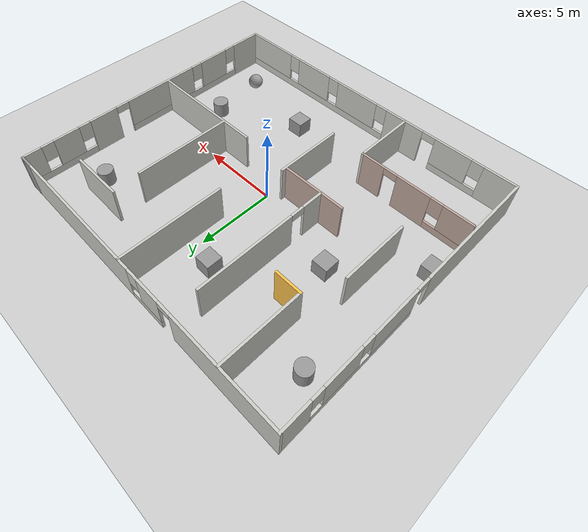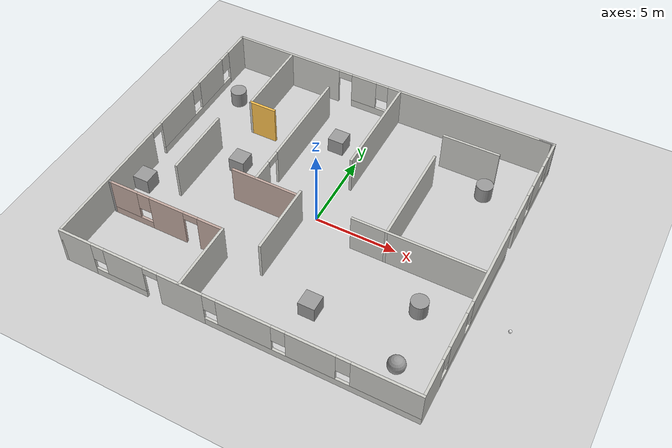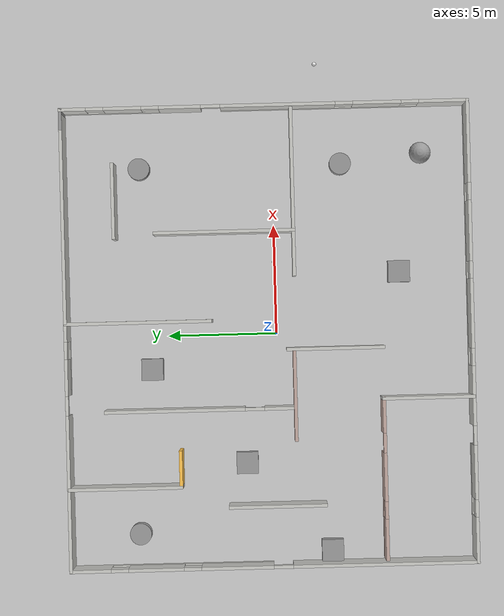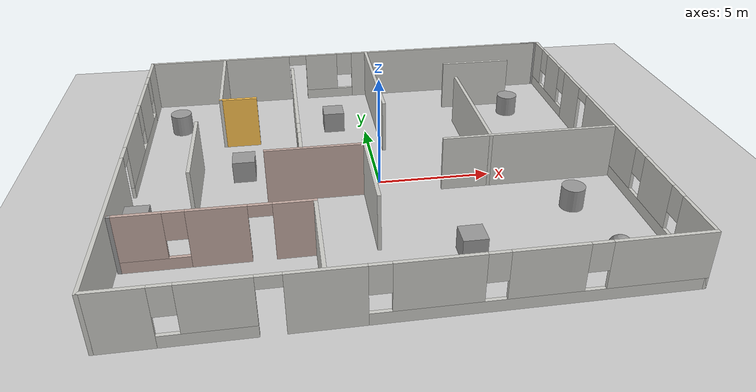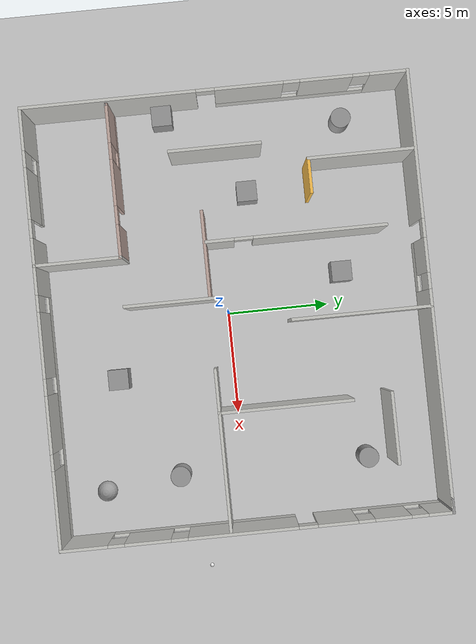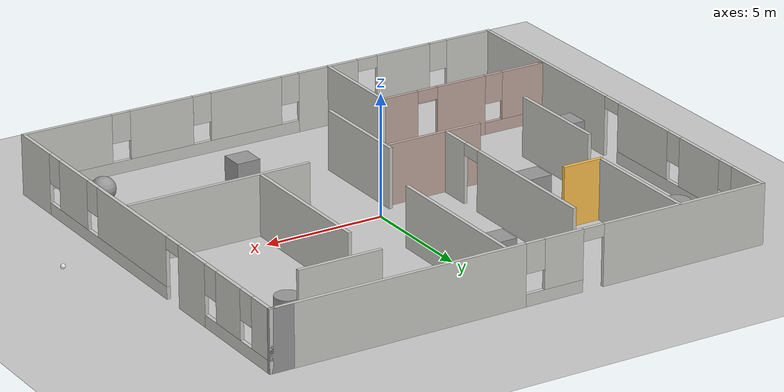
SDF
<sdf version="1.6">
 <world name="default">
  <light name="sun" type="directional">
   <pose>0 0 10 0 -0 0</pose>
   <diffuse>0.8 0.8 0.8 1</diffuse>
   <specular>0.2 0.2 0.2 1</specular>
   <attenuation>
    <range>1000</range>
    <constant>0.9</constant>
    <linear>0.01</linear>
    <quadratic>0.001</quadratic>
   </attenuation>
   <direction>-0.5 0.1 -0.9</direction>
  </light>
  <model name="ground_plane">
   <static>1</static>
   <link name="link">
    <collision name="collision">
     <geometry><plane><normal>0 0 1</normal><size>100 100</size></plane></geometry>
     <surface><friction><ode><mu>100</mu><mu2>50</mu2></ode></friction></surface>
    </collision>
    <visual name="visual">
     <cast_shadows>0</cast_shadows>
     <geometry><plane><normal>0 0 1</normal><size>100 100</size></plane></geometry>
     <material>
      <script><uri>file://media/materials/scripts/gazebo.material</uri><name>Gazebo/Grey</name></script>
     </material>
    </visual>
   </link>
  </model>
  <gravity>0 0 -9.8</gravity>
  <magnetic_field>6e-06 2.3e-05 -4.2e-05</magnetic_field>
  <atmosphere type="adiabatic"/>
  <physics name="default_physics" default="0" type="ode">
   <max_step_size>0.001</max_step_size>
   <real_time_factor>1</real_time_factor>
   <real_time_update_rate>1000</real_time_update_rate>
  </physics>
  <scene><ambient>0.4 0.4 0.4 1</ambient><background>0.7 0.7 0.7 1</background><shadows>1</shadows></scene>
  <spherical_coordinates>
   <surface_model>EARTH_WGS84</surface_model>
   <latitude_deg>0</latitude_deg>
   <longitude_deg>0</longitude_deg>
   <elevation>0</elevation>
   <heading_deg>0</heading_deg>
  </spherical_coordinates>
  <model name="training_area">
   <pose>-0.09596 0.33644 0 0 -0 0</pose>
   <link name="Wall_11">
    <collision name="Wall_11_Collision">
     <geometry><box><size>4.25 0.15 2.5</size></box></geometry>
     <pose>0 0 1.25 0 -0 0</pose>
    </collision>
    <visual name="Wall_11_Visual">
     <pose>0 0 1.25 0 -0 0</pose>
     <geometry><box><size>4.25 0.15 2.5</size></box></geometry>
     <material>
      <script><uri>file://media/materials/scripts/gazebo.material</uri><name>Gazebo/CeilingTiled</name></script>
      <ambient>0.760784 0.662745 0.627451 1</ambient>
     </material>
     <meta><layer>0</layer></meta>
    </visual>
    <pose>-2.97768 -7.23047 0 0 0 -1.5708</pose>
   </link>
   <link name="Wall_13">
    <pose>-6.65268 -5.18047 0 0 -0 3.14159</pose>
    <visual name="Wall_13_Visual_0">
     <pose>-2.92229 0 1.25 0 -0 0</pose>
     <geometry><box><size>1.65542 0.15 2.5</size></box></geometry>
     <material>
      <script><uri>file://media/materials/scripts/gazebo.material</uri><name>Gazebo/Grey</name></script>
      <ambient>0.760784 0.662745 0.627451 1</ambient>
     </material>
     <meta><layer>0</layer></meta>
    </visual>
    <collision name="Wall_13_Collision_0">
     <geometry><box><size>1.65542 0.15 2.5</size></box></geometry>
     <pose>-2.92229 0 1.25 0 -0 0</pose>
    </collision>
    <visual name="Wall_13_Visual_1">
     <pose>-0.081383 0 1.25 0 -0 0</pose>
     <geometry><box><size>2.22639 0.15 2.5</size></box></geometry>
     <material>
      <script><uri>file://media/materials/scripts/gazebo.material</uri><name>Gazebo/Grey</name></script>
      <ambient>0.760784 0.662745 0.627451 1</ambient>
     </material>
     <meta><layer>0</layer></meta>
    </visual>
    <collision name="Wall_13_Collision_1">
     <geometry><box><size>2.22639 0.15 2.5</size></box></geometry>
     <pose>-0.081383 0 1.25 0 -0 0</pose>
    </collision>
    <visual name="Wall_13_Visual_2">
     <pose>2.39091 0 0.25 0 -0 0</pose>
     <geometry><box><size>2.71819 0.15 0.5</size></box></geometry>
     <material>
      <script><uri>file://media/materials/scripts/gazebo.material</uri><name>Gazebo/Grey</name></script>
      <ambient>0.760784 0.662745 0.627451 1</ambient>
     </material>
     <meta><layer>0</layer></meta>
    </visual>
    <collision name="Wall_13_Collision_2">
     <geometry><box><size>2.71819 0.15 0.5</size></box></geometry>
     <pose>2.39091 0 0.25 0 -0 0</pose>
    </collision>
    <visual name="Wall_13_Visual_3">
     <pose>2.79091 0 1.5 0 -0 0</pose>
     <geometry><box><size>1.91819 0.15 2</size></box></geometry>
     <material>
      <script><uri>file://media/materials/scripts/gazebo.material</uri><name>Gazebo/Grey</name></script>
      <ambient>0.760784 0.662745 0.627451 1</ambient>
     </material>
     <meta><layer>0</layer></meta>
    </visual>
    <collision name="Wall_13_Collision_3">
     <geometry><box><size>1.91819 0.15 2</size></box></geometry>
     <pose>2.79091 0 1.5 0 -0 0</pose>
    </collision>
    <visual name="Wall_13_Visual_4">
     <pose>1.43181 0 1.9 0 -0 0</pose>
     <geometry><box><size>0.8 0.15 1.2</size></box></geometry>
     <material>
      <script><uri>file://media/materials/scripts/gazebo.material</uri><name>Gazebo/Grey</name></script>
      <ambient>0.760784 0.662745 0.627451 1</ambient>
     </material>
     <meta><layer>0</layer></meta>
    </visual>
    <collision name="Wall_13_Collision_4">
     <geometry><box><size>0.8 0.15 1.2</size></box></geometry>
     <pose>1.43181 0 1.9 0 -0 0</pose>
    </collision>
    <visual name="Wall_13_Visual_5">
     <pose>-1.64458 0 2.25 0 -0 0</pose>
     <geometry><box><size>0.9 0.15 0.5</size></box></geometry>
     <material>
      <script><uri>file://media/materials/scripts/gazebo.material</uri><name>Gazebo/Grey</name></script>
      <ambient>0.760784 0.662745 0.627451 1</ambient>
     </material>
     <meta><layer>0</layer></meta>
    </visual>
    <collision name="Wall_13_Collision_5">
     <geometry><box><size>0.9 0.15 0.5</size></box></geometry>
     <pose>-1.64458 0 2.25 0 -0 0</pose>
    </collision>
   </link>
   <link name="Wall_14">
    <collision name="Wall_14_Collision">
     <geometry><box><size>0.15 0.15 2.5</size></box></geometry>
     <pose>0 0 1.25 0 -0 0</pose>
    </collision>
    <visual name="Wall_14_Visual">
     <pose>0 0 1.25 0 -0 0</pose>
     <geometry><box><size>0.15 0.15 2.5</size></box></geometry>
     <material>
      <script><uri>file://media/materials/scripts/gazebo.material</uri><name>Gazebo/Grey</name></script>
      <ambient>1 1 1 1</ambient>
     </material>
     <meta><layer>0</layer></meta>
    </visual>
    <pose>-10.3277 -5.18047 0 0 -0 0</pose>
   </link>
   <link name="Wall_16">
    <collision name="Wall_16_Collision">
     <geometry><box><size>4.25 0.15 2.5</size></box></geometry>
     <pose>0 0 1.25 0 -0 0</pose>
    </collision>
    <visual name="Wall_16_Visual">
     <pose>0 0 1.25 0 -0 0</pose>
     <geometry><box><size>4.25 0.15 2.5</size></box></geometry>
     <material>
      <script><uri>file://media/materials/scripts/gazebo.material</uri><name>Gazebo/Grey</name></script>
      <ambient>0.760784 0.662745 0.627451 1</ambient>
     </material>
     <meta><layer>0</layer></meta>
    </visual>
    <pose>-2.72495 -1.14348 0 0 -0 0</pose>
   </link>
   <link name="Wall_18">
    <pose>-3.31028 3.23789 0 0 -0 1.5708</pose>
    <visual name="Wall_18_Visual_0">
     <pose>-3.66742 0 1.25 0 -0 0</pose>
     <geometry><box><size>1.41515 0.15 2.5</size></box></geometry>
     <material>
      <script><uri>file://media/materials/scripts/gazebo.material</uri><name>Gazebo/CeilingTiled</name></script>
      <ambient>0.760784 0.662745 0.627451 1</ambient>
     </material>
     <meta><layer>0</layer></meta>
    </visual>
    <collision name="Wall_18_Collision_0">
     <geometry><box><size>1.41515 0.15 2.5</size></box></geometry>
     <pose>-3.66742 0 1.25 0 -0 0</pose>
    </collision>
    <visual name="Wall_18_Visual_1">
     <pose>1.15758 0 1.25 0 -0 0</pose>
     <geometry><box><size>6.43485 0.15 2.5</size></box></geometry>
     <material>
      <script><uri>file://media/materials/scripts/gazebo.material</uri><name>Gazebo/CeilingTiled</name></script>
      <ambient>0.760784 0.662745 0.627451 1</ambient>
     </material>
     <meta><layer>0</layer></meta>
    </visual>
    <collision name="Wall_18_Collision_1">
     <geometry><box><size>6.43485 0.15 2.5</size></box></geometry>
     <pose>1.15758 0 1.25 0 -0 0</pose>
    </collision>
    <visual name="Wall_18_Visual_2">
     <pose>-2.50985 0 2.25 0 -0 0</pose>
     <geometry><box><size>0.9 0.15 0.5</size></box></geometry>
     <material>
      <script><uri>file://media/materials/scripts/gazebo.material</uri><name>Gazebo/CeilingTiled</name></script>
      <ambient>0.760784 0.662745 0.627451 1</ambient>
     </material>
     <meta><layer>0</layer></meta>
    </visual>
    <collision name="Wall_18_Collision_2">
     <geometry><box><size>0.9 0.15 0.5</size></box></geometry>
     <pose>-2.50985 0 2.25 0 -0 0</pose>
    </collision>
   </link>
   <link name="Wall_20">
    <collision name="Wall_20_Collision">
     <geometry><box><size>4.5 0.15 2.5</size></box></geometry>
     <pose>0 0 1.25 0 -0 0</pose>
    </collision>
    <visual name="Wall_20_Visual">
     <pose>0 0 1.25 0 -0 0</pose>
     <geometry><box><size>4.5 0.15 2.5</size></box></geometry>
     <material>
      <script><uri>file://media/materials/scripts/gazebo.material</uri><name>Gazebo/CeilingTiled</name></script>
      <ambient>0.996078 0.47451 0.0196078 1</ambient>
     </material>
     <meta><layer>0</layer></meta>
    </visual>
    <pose>-0.625048 -3.03701 0 0 -0 1.5708</pose>
   </link>
   <link name="Wall_22">
    <collision name="Wall_22_Collision">
     <geometry><box><size>5.25 0.15 2.5</size></box></geometry>
     <pose>0 0 1.25 0 -0 0</pose>
    </collision>
    <visual name="Wall_22_Visual">
     <pose>0 0 1.25 0 -0 0</pose>
     <geometry><box><size>5.25 0.15 2.5</size></box></geometry>
     <material>
      <script><uri>file://media/materials/scripts/gazebo.material</uri><name>Gazebo/CeilingTiled</name></script>
      <ambient>1 0.764706 0.305882 1</ambient>
     </material>
     <meta><layer>0</layer></meta>
    </visual>
    <pose>-6.80922 6.72196 0 0 0 -1.5708</pose>
   </link>
   <link name="Wall_23">
    <collision name="Wall_23_Collision">
     <geometry><box><size>1.75 0.15 2.5</size></box></geometry>
     <pose>0 0 1.25 0 -0 0</pose>
    </collision>
    <visual name="Wall_23_Visual">
     <pose>0 0 1.25 0 -0 0</pose>
     <geometry><box><size>1.75 0.15 2.5</size></box></geometry>
     <material>
      <script><uri>file://media/materials/scripts/gazebo.material</uri><name>Gazebo/Grey</name></script>
      <ambient>1 0.764706 0.305882 1</ambient>
     </material>
     <meta><layer>0</layer></meta>
    </visual>
    <pose>-6.00922 4.17196 0 0 -0 0</pose>
   </link>
   <link name="Wall_26">
    <collision name="Wall_26_Collision">
     <geometry><box><size>4.5 0.15 2.5</size></box></geometry>
     <pose>0 0 1.25 0 -0 0</pose>
    </collision>
    <visual name="Wall_26_Visual">
     <pose>0 0 1.25 0 -0 0</pose>
     <geometry><box><size>4.5 0.15 2.5</size></box></geometry>
     <material>
      <script><uri>file://media/materials/scripts/gazebo.material</uri><name>Gazebo/CeilingTiled</name></script>
      <ambient>1 0.764706 0.305882 1</ambient>
     </material>
     <meta><layer>0</layer></meta>
    </visual>
    <pose>-7.78566 -0.226392 0 0 0 -1.5708</pose>
   </link>
   <link name="Wall_28">
    <collision name="Wall_28_Collision">
     <geometry><box><size>6.75 0.15 2.5</size></box></geometry>
     <pose>0 0 1.25 0 -0 0</pose>
    </collision>
    <visual name="Wall_28_Visual">
     <pose>0 0 1.25 0 -0 0</pose>
     <geometry><box><size>6.75 0.15 2.5</size></box></geometry>
     <material>
      <script><uri>file://media/materials/scripts/gazebo.material</uri><name>Gazebo/CeilingTiled</name></script>
      <ambient>0.435294 0.796078 0.67451 1</ambient>
     </material>
     <meta><layer>0</layer></meta>
    </visual>
    <pose>0.758252 5.97196 0 0 0 -1.5708</pose>
   </link>
   <link name="Wall_3">
    <pose>-0.13 9.3 0 0 -0 3.14159</pose>
    <visual name="Wall_3_Visual_0">
     <pose>-5.29204 0 1.25 0 -0 0</pose>
     <geometry><box><size>10.4159 0.15 2.5</size></box></geometry>
     <material>
      <script><uri>file://media/materials/scripts/gazebo.material</uri><name>Gazebo/CeilingTiled</name></script>
      <ambient>1 0.764706 0.305882 1</ambient>
     </material>
     <meta><layer>0</layer></meta>
    </visual>
    <collision name="Wall_3_Collision_0">
     <geometry><box><size>10.4159 0.15 2.5</size></box></geometry>
     <pose>-5.29204 0 1.25 0 -0 0</pose>
    </collision>
    <visual name="Wall_3_Visual_1">
     <pose>6.89421 0 1.25 0 -0 0</pose>
     <geometry><box><size>7.21159 0.15 2.5</size></box></geometry>
     <material>
      <script><uri>file://media/materials/scripts/gazebo.material</uri><name>Gazebo/CeilingTiled</name></script>
      <ambient>1 0.764706 0.305882 1</ambient>
     </material>
     <meta><layer>0</layer></meta>
    </visual>
    <collision name="Wall_3_Collision_1">
     <geometry><box><size>7.21159 0.15 2.5</size></box></geometry>
     <pose>6.89421 0 1.25 0 -0 0</pose>
    </collision>
    <visual name="Wall_3_Visual_2">
     <pose>1.15217 0 0.25 0 -0 0</pose>
     <geometry><box><size>2.47249 0.15 0.5</size></box></geometry>
     <material>
      <script><uri>file://media/materials/scripts/gazebo.material</uri><name>Gazebo/CeilingTiled</name></script>
      <ambient>1 0.764706 0.305882 1</ambient>
     </material>
     <meta><layer>0</layer></meta>
    </visual>
    <collision name="Wall_3_Collision_2">
     <geometry><box><size>2.47249 0.15 0.5</size></box></geometry>
     <pose>1.15217 0 0.25 0 -0 0</pose>
    </collision>
    <visual name="Wall_3_Visual_3">
     <pose>1.55217 0 1.5 0 -0 0</pose>
     <geometry><box><size>1.67249 0.15 2</size></box></geometry>
     <material>
      <script><uri>file://media/materials/scripts/gazebo.material</uri><name>Gazebo/CeilingTiled</name></script>
      <ambient>1 0.764706 0.305882 1</ambient>
     </material>
     <meta><layer>0</layer></meta>
    </visual>
    <collision name="Wall_3_Collision_3">
     <geometry><box><size>1.67249 0.15 2</size></box></geometry>
     <pose>1.55217 0 1.5 0 -0 0</pose>
    </collision>
    <visual name="Wall_3_Visual_4">
     <pose>0.315921 0 1.9 0 -0 0</pose>
     <geometry><box><size>0.8 0.15 1.2</size></box></geometry>
     <material>
      <script><uri>file://media/materials/scripts/gazebo.material</uri><name>Gazebo/CeilingTiled</name></script>
      <ambient>1 0.764706 0.305882 1</ambient>
     </material>
     <meta><layer>0</layer></meta>
    </visual>
    <collision name="Wall_3_Collision_4">
     <geometry><box><size>0.8 0.15 1.2</size></box></geometry>
     <pose>0.315921 0 1.9 0 -0 0</pose>
    </collision>
    <visual name="Wall_3_Visual_5">
     <pose>2.83841 0 2.25 0 -0 0</pose>
     <geometry><box><size>0.9 0.15 0.5</size></box></geometry>
     <material>
      <script><uri>file://media/materials/scripts/gazebo.material</uri><name>Gazebo/CeilingTiled</name></script>
      <ambient>1 0.764706 0.305882 1</ambient>
     </material>
     <meta><layer>0</layer></meta>
    </visual>
    <collision name="Wall_3_Collision_5">
     <geometry><box><size>0.9 0.15 0.5</size></box></geometry>
     <pose>2.83841 0 2.25 0 -0 0</pose>
    </collision>
   </link>
   <link name="Wall_30">
    <collision name="Wall_30_Collision">
     <geometry><box><size>3.5 0.15 2.5</size></box></geometry>
     <pose>0 0 1.25 0 -0 0</pose>
    </collision>
    <visual name="Wall_30_Visual">
     <pose>0 0 1.25 0 -0 0</pose>
     <geometry><box><size>3.5 0.15 2.5</size></box></geometry>
     <material>
      <script><uri>file://media/materials/scripts/gazebo.material</uri><name>Gazebo/CeilingTiled</name></script>
      <ambient>0.435294 0.796078 0.67451 1</ambient>
     </material>
     <meta><layer>0</layer></meta>
    </visual>
    <pose>6.33904 6.99359 0 0 -0 0</pose>
   </link>
   <link name="Wall_32">
    <collision name="Wall_32_Collision">
     <geometry><box><size>6.5 0.15 2.5</size></box></geometry>
     <pose>0 0 1.25 0 -0 0</pose>
    </collision>
    <visual name="Wall_32_Visual">
     <pose>0 0 1.25 0 -0 0</pose>
     <geometry><box><size>6.5 0.15 2.5</size></box></geometry>
     <material>
      <script><uri>file://media/materials/scripts/gazebo.material</uri><name>Gazebo/CeilingTiled</name></script>
      <ambient>0.435294 0.796078 0.67451 1</ambient>
     </material>
     <meta><layer>0</layer></meta>
    </visual>
    <pose>4.82678 1.94706 0 0 0 -1.5708</pose>
   </link>
   <link name="Wall_34">
    <collision name="Wall_34_Collision">
     <geometry><box><size>7.75 0.15 2.5</size></box></geometry>
     <pose>0 0 1.25 0 -0 0</pose>
    </collision>
    <visual name="Wall_34_Visual">
     <pose>0 0 1.25 0 -0 0</pose>
     <geometry><box><size>7.75 0.15 2.5</size></box></geometry>
     <material>
      <script><uri>file://media/materials/scripts/gazebo.material</uri><name>Gazebo/CeilingTiled</name></script>
      <ambient>0.996078 0.47451 0.0196078 1</ambient>
     </material>
     <meta><layer>0</layer></meta>
    </visual>
    <pose>6.59252 -1.22485 0 0 -0 0</pose>
   </link>
   <link name="Wall_4">
    <collision name="Wall_4_Collision">
     <geometry><box><size>0.16 0.15 2.5</size></box></geometry>
     <pose>0 0 1.25 0 -0 0</pose>
    </collision>
    <visual name="Wall_4_Visual">
     <pose>0 0 1.25 0 -0 0</pose>
     <geometry><box><size>0.16 0.15 2.5</size></box></geometry>
     <material>
      <script><uri>file://media/materials/scripts/gazebo.material</uri><name>Gazebo/Grey</name></script>
      <ambient>1 1 1 1</ambient>
     </material>
     <meta><layer>0</layer></meta>
    </visual>
    <pose>-10.55 9.3 0 0 -0 0</pose>
   </link>
   <link name="Wall_5">
    <pose>-10.545 0 0 0 0 -1.5708</pose>
    <visual name="Wall_5_Visual_0">
     <pose>-8.42498 0 1.25 0 -0 0</pose>
     <geometry><box><size>1.90004 0.15 2.5</size></box></geometry>
     <material>
      <script><uri>file://media/materials/scripts/gazebo.material</uri><name>Gazebo/CeilingTiled</name></script>
      <ambient>1 0.764706 0.305882 1</ambient>
     </material>
     <meta><layer>0</layer></meta>
    </visual>
    <collision name="Wall_5_Collision_0">
     <geometry><box><size>1.90004 0.15 2.5</size></box></geometry>
     <pose>-8.42498 0 1.25 0 -0 0</pose>
    </collision>
    <visual name="Wall_5_Visual_1">
     <pose>5.11807 0 1.25 0 -0 0</pose>
     <geometry><box><size>8.51386 0.15 2.5</size></box></geometry>
     <material>
      <script><uri>file://media/materials/scripts/gazebo.material</uri><name>Gazebo/CeilingTiled</name></script>
      <ambient>1 0.764706 0.305882 1</ambient>
     </material>
     <meta><layer>0</layer></meta>
    </visual>
    <collision name="Wall_5_Collision_1">
     <geometry><box><size>8.51386 0.15 2.5</size></box></geometry>
     <pose>5.11807 0 1.25 0 -0 0</pose>
    </collision>
    <visual name="Wall_5_Visual_2">
     <pose>-3.75691 0 0.25 0 -0 0</pose>
     <geometry><box><size>7.4361 0.15 0.5</size></box></geometry>
     <material>
      <script><uri>file://media/materials/scripts/gazebo.material</uri><name>Gazebo/CeilingTiled</name></script>
      <ambient>1 0.764706 0.305882 1</ambient>
     </material>
     <meta><layer>0</layer></meta>
    </visual>
    <collision name="Wall_5_Collision_2">
     <geometry><box><size>7.4361 0.15 0.5</size></box></geometry>
     <pose>-3.75691 0 0.25 0 -0 0</pose>
    </collision>
    <visual name="Wall_5_Visual_3">
     <pose>-5.40686 0 1.5 0 -0 0</pose>
     <geometry><box><size>2.5362 0.15 2</size></box></geometry>
     <material>
      <script><uri>file://media/materials/scripts/gazebo.material</uri><name>Gazebo/CeilingTiled</name></script>
      <ambient>1 0.764706 0.305882 1</ambient>
     </material>
     <meta><layer>0</layer></meta>
    </visual>
    <collision name="Wall_5_Collision_3">
     <geometry><box><size>2.5362 0.15 2</size></box></geometry>
     <pose>-5.40686 0 1.5 0 -0 0</pose>
    </collision>
    <visual name="Wall_5_Visual_4">
     <pose>-1.68881 0 1.5 0 -0 0</pose>
     <geometry><box><size>3.2999 0.15 2</size></box></geometry>
     <material>
      <script><uri>file://media/materials/scripts/gazebo.material</uri><name>Gazebo/CeilingTiled</name></script>
      <ambient>1 0.764706 0.305882 1</ambient>
     </material>
     <meta><layer>0</layer></meta>
    </visual>
    <collision name="Wall_5_Collision_4">
     <geometry><box><size>3.2999 0.15 2</size></box></geometry>
     <pose>-1.68881 0 1.5 0 -0 0</pose>
    </collision>
    <visual name="Wall_5_Visual_5">
     <pose>-7.07496 0 1.9 0 -0 0</pose>
     <geometry><box><size>0.8 0.15 1.2</size></box></geometry>
     <material>
      <script><uri>file://media/materials/scripts/gazebo.material</uri><name>Gazebo/CeilingTiled</name></script>
      <ambient>1 0.764706 0.305882 1</ambient>
     </material>
     <meta><layer>0</layer></meta>
    </visual>
    <collision name="Wall_5_Collision_5">
     <geometry><box><size>0.8 0.15 1.2</size></box></geometry>
     <pose>-7.07496 0 1.9 0 -0 0</pose>
    </collision>
    <visual name="Wall_5_Visual_6">
     <pose>-3.73876 0 1.9 0 -0 0</pose>
     <geometry><box><size>0.8 0.15 1.2</size></box></geometry>
     <material>
      <script><uri>file://media/materials/scripts/gazebo.material</uri><name>Gazebo/CeilingTiled</name></script>
      <ambient>1 0.764706 0.305882 1</ambient>
     </material>
     <meta><layer>0</layer></meta>
    </visual>
    <collision name="Wall_5_Collision_6">
     <geometry><box><size>0.8 0.15 1.2</size></box></geometry>
     <pose>-3.73876 0 1.9 0 -0 0</pose>
    </collision>
    <visual name="Wall_5_Visual_7">
     <pose>0.41114 0 2.25 0 -0 0</pose>
     <geometry><box><size>0.9 0.15 0.5</size></box></geometry>
     <material>
      <script><uri>file://media/materials/scripts/gazebo.material</uri><name>Gazebo/CeilingTiled</name></script>
      <ambient>1 0.764706 0.305882 1</ambient>
     </material>
     <meta><layer>0</layer></meta>
    </visual>
    <collision name="Wall_5_Collision_7">
     <geometry><box><size>0.9 0.15 0.5</size></box></geometry>
     <pose>0.41114 0 2.25 0 -0 0</pose>
    </collision>
   </link>
   <link name="Wall_6">
    <pose>0.005 -9.3 0 0 -0 0</pose>
    <visual name="Wall_6_Visual_0">
     <pose>-9.56238 0 1.25 0 -0 0</pose>
     <geometry><box><size>2.12524 0.15 2.5</size></box></geometry>
     <material>
      <script><uri>file://media/materials/scripts/gazebo.material</uri><name>Gazebo/CeilingTiled</name></script>
      <ambient>1 0.764706 0.305882 1</ambient>
     </material>
     <meta><layer>0</layer></meta>
    </visual>
    <collision name="Wall_6_Collision_0">
     <geometry><box><size>2.12524 0.15 2.5</size></box></geometry>
     <pose>-9.56238 0 1.25 0 -0 0</pose>
    </collision>
    <visual name="Wall_6_Visual_1">
     <pose>-2.94841 0 1.25 0 -0 0</pose>
     <geometry><box><size>2.73031 0.15 2.5</size></box></geometry>
     <material>
      <script><uri>file://media/materials/scripts/gazebo.material</uri><name>Gazebo/CeilingTiled</name></script>
      <ambient>1 0.764706 0.305882 1</ambient>
     </material>
     <meta><layer>0</layer></meta>
    </visual>
    <collision name="Wall_6_Collision_1">
     <geometry><box><size>2.73031 0.15 2.5</size></box></geometry>
     <pose>-2.94841 0 1.25 0 -0 0</pose>
    </collision>
    <visual name="Wall_6_Visual_2">
     <pose>-6.85666 0 0.25 0 -0 0</pose>
     <geometry><box><size>3.2862 0.15 0.5</size></box></geometry>
     <material>
      <script><uri>file://media/materials/scripts/gazebo.material</uri><name>Gazebo/CeilingTiled</name></script>
      <ambient>1 0.764706 0.305882 1</ambient>
     </material>
     <meta><layer>0</layer></meta>
    </visual>
    <collision name="Wall_6_Collision_2">
     <geometry><box><size>3.2862 0.15 0.5</size></box></geometry>
     <pose>-6.85666 0 0.25 0 -0 0</pose>
    </collision>
    <visual name="Wall_6_Visual_3">
     <pose>4.52087 0 0.25 0 -0 0</pose>
     <geometry><box><size>12.2083 0.15 0.5</size></box></geometry>
     <material>
      <script><uri>file://media/materials/scripts/gazebo.material</uri><name>Gazebo/CeilingTiled</name></script>
      <ambient>1 0.764706 0.305882 1</ambient>
     </material>
     <meta><layer>0</layer></meta>
    </visual>
    <collision name="Wall_6_Collision_3">
     <geometry><box><size>12.2083 0.15 0.5</size></box></geometry>
     <pose>4.52087 0 0.25 0 -0 0</pose>
    </collision>
    <visual name="Wall_6_Visual_4">
     <pose>-6.45666 0 1.5 0 -0 0</pose>
     <geometry><box><size>2.4862 0.15 2</size></box></geometry>
     <material>
      <script><uri>file://media/materials/scripts/gazebo.material</uri><name>Gazebo/CeilingTiled</name></script>
      <ambient>1 0.764706 0.305882 1</ambient>
     </material>
     <meta><layer>0</layer></meta>
    </visual>
    <collision name="Wall_6_Collision_4">
     <geometry><box><size>2.4862 0.15 2</size></box></geometry>
     <pose>-6.45666 0 1.5 0 -0 0</pose>
    </collision>
    <visual name="Wall_6_Visual_5">
     <pose>-6.45666 0 1.5 0 -0 0</pose>
     <geometry><box><size>2.4862 0.15 2</size></box></geometry>
     <material>
      <script><uri>file://media/materials/scripts/gazebo.material</uri><name>Gazebo/CeilingTiled</name></script>
      <ambient>1 0.764706 0.305882 1</ambient>
     </material>
     <meta><layer>0</layer></meta>
    </visual>
    <collision name="Wall_6_Collision_5">
     <geometry><box><size>2.4862 0.15 2</size></box></geometry>
     <pose>-6.45666 0 1.5 0 -0 0</pose>
    </collision>
    <visual name="Wall_6_Visual_6">
     <pose>0.810323 0 1.5 0 -0 0</pose>
     <geometry><box><size>3.18716 0.15 2</size></box></geometry>
     <material>
      <script><uri>file://media/materials/scripts/gazebo.material</uri><name>Gazebo/CeilingTiled</name></script>
      <ambient>1 0.764706 0.305882 1</ambient>
     </material>
     <meta><layer>0</layer></meta>
    </visual>
    <collision name="Wall_6_Collision_6">
     <geometry><box><size>3.18716 0.15 2</size></box></geometry>
     <pose>0.810323 0 1.5 0 -0 0</pose>
    </collision>
    <visual name="Wall_6_Visual_7">
     <pose>4.59406 0 1.5 0 -0 0</pose>
     <geometry><box><size>2.78031 0.15 2</size></box></geometry>
     <material>
      <script><uri>file://media/materials/scripts/gazebo.material</uri><name>Gazebo/CeilingTiled</name></script>
      <ambient>1 0.764706 0.305882 1</ambient>
     </material>
     <meta><layer>0</layer></meta>
    </visual>
    <collision name="Wall_6_Collision_7">
     <geometry><box><size>2.78031 0.15 2</size></box></geometry>
     <pose>4.59406 0 1.5 0 -0 0</pose>
    </collision>
    <visual name="Wall_6_Visual_8">
     <pose>8.70461 0 1.5 0 -0 0</pose>
     <geometry><box><size>3.84079 0.15 2</size></box></geometry>
     <material>
      <script><uri>file://media/materials/scripts/gazebo.material</uri><name>Gazebo/CeilingTiled</name></script>
      <ambient>1 0.764706 0.305882 1</ambient>
     </material>
     <meta><layer>0</layer></meta>
    </visual>
    <collision name="Wall_6_Collision_8">
     <geometry><box><size>3.84079 0.15 2</size></box></geometry>
     <pose>8.70461 0 1.5 0 -0 0</pose>
    </collision>
    <visual name="Wall_6_Visual_9">
     <pose>-8.09976 0 1.9 0 -0 0</pose>
     <geometry><box><size>0.8 0.15 1.2</size></box></geometry>
     <material>
      <script><uri>file://media/materials/scripts/gazebo.material</uri><name>Gazebo/CeilingTiled</name></script>
      <ambient>1 0.764706 0.305882 1</ambient>
     </material>
     <meta><layer>0</layer></meta>
    </visual>
    <collision name="Wall_6_Collision_9">
     <geometry><box><size>0.8 0.15 1.2</size></box></geometry>
     <pose>-8.09976 0 1.9 0 -0 0</pose>
    </collision>
    <visual name="Wall_6_Visual_10">
     <pose>-1.18326 0 1.9 0 -0 0</pose>
     <geometry><box><size>0.8 0.15 1.2</size></box></geometry>
     <material>
      <script><uri>file://media/materials/scripts/gazebo.material</uri><name>Gazebo/CeilingTiled</name></script>
      <ambient>1 0.764706 0.305882 1</ambient>
     </material>
     <meta><layer>0</layer></meta>
    </visual>
    <collision name="Wall_6_Collision_10">
     <geometry><box><size>0.8 0.15 1.2</size></box></geometry>
     <pose>-1.18326 0 1.9 0 -0 0</pose>
    </collision>
    <visual name="Wall_6_Visual_11">
     <pose>2.8039 0 1.9 0 -0 0</pose>
     <geometry><box><size>0.8 0.15 1.2</size></box></geometry>
     <material>
      <script><uri>file://media/materials/scripts/gazebo.material</uri><name>Gazebo/CeilingTiled</name></script>
      <ambient>1 0.764706 0.305882 1</ambient>
     </material>
     <meta><layer>0</layer></meta>
    </visual>
    <collision name="Wall_6_Collision_11">
     <geometry><box><size>0.8 0.15 1.2</size></box></geometry>
     <pose>2.8039 0 1.9 0 -0 0</pose>
    </collision>
    <visual name="Wall_6_Visual_12">
     <pose>6.38421 0 1.9 0 -0 0</pose>
     <geometry><box><size>0.8 0.15 1.2</size></box></geometry>
     <material>
      <script><uri>file://media/materials/scripts/gazebo.material</uri><name>Gazebo/CeilingTiled</name></script>
      <ambient>1 0.764706 0.305882 1</ambient>
     </material>
     <meta><layer>0</layer></meta>
    </visual>
    <collision name="Wall_6_Collision_12">
     <geometry><box><size>0.8 0.15 1.2</size></box></geometry>
     <pose>6.38421 0 1.9 0 -0 0</pose>
    </collision>
    <visual name="Wall_6_Visual_13">
     <pose>-4.76356 0 2.25 0 -0 0</pose>
     <geometry><box><size>0.9 0.15 0.5</size></box></geometry>
     <material>
      <script><uri>file://media/materials/scripts/gazebo.material</uri><name>Gazebo/CeilingTiled</name></script>
      <ambient>1 0.764706 0.305882 1</ambient>
     </material>
     <meta><layer>0</layer></meta>
    </visual>
    <collision name="Wall_6_Collision_13">
     <geometry><box><size>0.9 0.15 0.5</size></box></geometry>
     <pose>-4.76356 0 2.25 0 -0 0</pose>
    </collision>
    <visual name="Wall_6_Visual_14">
     <pose>-4.76356 0 2.25 0 -0 0</pose>
     <geometry><box><size>0.9 0.15 0.5</size></box></geometry>
     <material>
      <script><uri>file://media/materials/scripts/gazebo.material</uri><name>Gazebo/CeilingTiled</name></script>
      <ambient>1 0.764706 0.305882 1</ambient>
     </material>
     <meta><layer>0</layer></meta>
    </visual>
    <collision name="Wall_6_Collision_14">
     <geometry><box><size>0.9 0.15 0.5</size></box></geometry>
     <pose>-4.76356 0 2.25 0 -0 0</pose>
    </collision>
   </link>
   <link name="Wall_7">
    <pose>10.555 0 0 0 -0 1.5708</pose>
    <visual name="Wall_7_Visual_0">
     <pose>-8.22584 0 1.25 0 -0 0</pose>
     <geometry><box><size>2.29832 0.15 2.5</size></box></geometry>
     <material>
      <script><uri>file://media/materials/scripts/gazebo.material</uri><name>Gazebo/CeilingTiled</name></script>
      <ambient>1 0.764706 0.305882 1</ambient>
     </material>
     <meta><layer>0</layer></meta>
    </visual>
    <collision name="Wall_7_Collision_0">
     <geometry><box><size>2.29832 0.15 2.5</size></box></geometry>
     <pose>-8.22584 0 1.25 0 -0 0</pose>
    </collision>
    <visual name="Wall_7_Visual_1">
     <pose>3.84513 0 1.25 0 -0 0</pose>
     <geometry><box><size>1.9166 0.15 2.5</size></box></geometry>
     <material>
      <script><uri>file://media/materials/scripts/gazebo.material</uri><name>Gazebo/CeilingTiled</name></script>
      <ambient>1 0.764706 0.305882 1</ambient>
     </material>
     <meta><layer>0</layer></meta>
    </visual>
    <collision name="Wall_7_Collision_1">
     <geometry><box><size>1.9166 0.15 2.5</size></box></geometry>
     <pose>3.84513 0 1.25 0 -0 0</pose>
    </collision>
    <visual name="Wall_7_Visual_2">
     <pose>-2.54492 0 0.25 0 -0 0</pose>
     <geometry><box><size>9.06351 0.15 0.5</size></box></geometry>
     <material>
      <script><uri>file://media/materials/scripts/gazebo.material</uri><name>Gazebo/CeilingTiled</name></script>
      <ambient>1 0.764706 0.305882 1</ambient>
     </material>
     <meta><layer>0</layer></meta>
    </visual>
    <collision name="Wall_7_Collision_2">
     <geometry><box><size>9.06351 0.15 0.5</size></box></geometry>
     <pose>-2.54492 0 0.25 0 -0 0</pose>
    </collision>
    <visual name="Wall_7_Visual_3">
     <pose>7.08922 0 0.25 0 -0 0</pose>
     <geometry><box><size>4.57157 0.15 0.5</size></box></geometry>
     <material>
      <script><uri>file://media/materials/scripts/gazebo.material</uri><name>Gazebo/CeilingTiled</name></script>
      <ambient>1 0.764706 0.305882 1</ambient>
     </material>
     <meta><layer>0</layer></meta>
    </visual>
    <collision name="Wall_7_Collision_3">
     <geometry><box><size>4.57157 0.15 0.5</size></box></geometry>
     <pose>7.08922 0 0.25 0 -0 0</pose>
    </collision>
    <visual name="Wall_7_Visual_4">
     <pose>-5.17132 0 1.5 0 -0 0</pose>
     <geometry><box><size>2.21071 0.15 2</size></box></geometry>
     <material>
      <script><uri>file://media/materials/scripts/gazebo.material</uri><name>Gazebo/CeilingTiled</name></script>
      <ambient>1 0.764706 0.305882 1</ambient>
     </material>
     <meta><layer>0</layer></meta>
    </visual>
    <collision name="Wall_7_Collision_4">
     <geometry><box><size>2.21071 0.15 2</size></box></geometry>
     <pose>-5.17132 0 1.5 0 -0 0</pose>
    </collision>
    <visual name="Wall_7_Visual_5">
     <pose>-0.639567 0 1.5 0 -0 0</pose>
     <geometry><box><size>5.2528 0.15 2</size></box></geometry>
     <material>
      <script><uri>file://media/materials/scripts/gazebo.material</uri><name>Gazebo/CeilingTiled</name></script>
      <ambient>1 0.764706 0.305882 1</ambient>
     </material>
     <meta><layer>0</layer></meta>
    </visual>
    <collision name="Wall_7_Collision_5">
     <geometry><box><size>5.2528 0.15 2</size></box></geometry>
     <pose>-0.639567 0 1.5 0 -0 0</pose>
    </collision>
    <visual name="Wall_7_Visual_6">
     <pose>-0.639567 0 1.5 0 -0 0</pose>
     <geometry><box><size>5.2528 0.15 2</size></box></geometry>
     <material>
      <script><uri>file://media/materials/scripts/gazebo.material</uri><name>Gazebo/CeilingTiled</name></script>
      <ambient>1 0.764706 0.305882 1</ambient>
     </material>
     <meta><layer>0</layer></meta>
    </visual>
    <collision name="Wall_7_Collision_6">
     <geometry><box><size>5.2528 0.15 2</size></box></geometry>
     <pose>-0.639567 0 1.5 0 -0 0</pose>
    </collision>
    <visual name="Wall_7_Visual_7">
     <pose>6.46468 0 1.5 0 -0 0</pose>
     <geometry><box><size>1.72249 0.15 2</size></box></geometry>
     <material>
      <script><uri>file://media/materials/scripts/gazebo.material</uri><name>Gazebo/CeilingTiled</name></script>
      <ambient>1 0.764706 0.305882 1</ambient>
     </material>
     <meta><layer>0</layer></meta>
    </visual>
    <collision name="Wall_7_Collision_7">
     <geometry><box><size>1.72249 0.15 2</size></box></geometry>
     <pose>6.46468 0 1.5 0 -0 0</pose>
    </collision>
    <visual name="Wall_7_Visual_8">
     <pose>8.75046 0 1.5 0 -0 0</pose>
     <geometry><box><size>1.24908 0.15 2</size></box></geometry>
     <material>
      <script><uri>file://media/materials/scripts/gazebo.material</uri><name>Gazebo/CeilingTiled</name></script>
      <ambient>1 0.764706 0.305882 1</ambient>
     </material>
     <meta><layer>0</layer></meta>
    </visual>
    <collision name="Wall_7_Collision_8">
     <geometry><box><size>1.24908 0.15 2</size></box></geometry>
     <pose>8.75046 0 1.5 0 -0 0</pose>
    </collision>
    <visual name="Wall_7_Visual_9">
     <pose>-6.67668 0 1.9 0 -0 0</pose>
     <geometry><box><size>0.8 0.15 1.2</size></box></geometry>
     <material>
      <script><uri>file://media/materials/scripts/gazebo.material</uri><name>Gazebo/CeilingTiled</name></script>
      <ambient>1 0.764706 0.305882 1</ambient>
     </material>
     <meta><layer>0</layer></meta>
    </visual>
    <collision name="Wall_7_Collision_9">
     <geometry><box><size>0.8 0.15 1.2</size></box></geometry>
     <pose>-6.67668 0 1.9 0 -0 0</pose>
    </collision>
    <visual name="Wall_7_Visual_10">
     <pose>5.20343 0 1.9 0 -0 0</pose>
     <geometry><box><size>0.8 0.15 1.2</size></box></geometry>
     <material>
      <script><uri>file://media/materials/scripts/gazebo.material</uri><name>Gazebo/CeilingTiled</name></script>
      <ambient>1 0.764706 0.305882 1</ambient>
     </material>
     <meta><layer>0</layer></meta>
    </visual>
    <collision name="Wall_7_Collision_10">
     <geometry><box><size>0.8 0.15 1.2</size></box></geometry>
     <pose>5.20343 0 1.9 0 -0 0</pose>
    </collision>
    <visual name="Wall_7_Visual_11">
     <pose>-3.66596 0 1.9 0 -0 0</pose>
     <geometry><box><size>0.8 0.15 1.2</size></box></geometry>
     <material>
      <script><uri>file://media/materials/scripts/gazebo.material</uri><name>Gazebo/CeilingTiled</name></script>
      <ambient>1 0.764706 0.305882 1</ambient>
     </material>
     <meta><layer>0</layer></meta>
    </visual>
    <collision name="Wall_7_Collision_11">
     <geometry><box><size>0.8 0.15 1.2</size></box></geometry>
     <pose>-3.66596 0 1.9 0 -0 0</pose>
    </collision>
    <visual name="Wall_7_Visual_12">
     <pose>7.72592 0 1.9 0 -0 0</pose>
     <geometry><box><size>0.8 0.15 1.2</size></box></geometry>
     <material>
      <script><uri>file://media/materials/scripts/gazebo.material</uri><name>Gazebo/CeilingTiled</name></script>
      <ambient>1 0.764706 0.305882 1</ambient>
     </material>
     <meta><layer>0</layer></meta>
    </visual>
    <collision name="Wall_7_Collision_12">
     <geometry><box><size>0.8 0.15 1.2</size></box></geometry>
     <pose>7.72592 0 1.9 0 -0 0</pose>
    </collision>
    <visual name="Wall_7_Visual_13">
     <pose>2.43683 0 2.25 0 -0 0</pose>
     <geometry><box><size>0.9 0.15 0.5</size></box></geometry>
     <material>
      <script><uri>file://media/materials/scripts/gazebo.material</uri><name>Gazebo/CeilingTiled</name></script>
      <ambient>1 0.764706 0.305882 1</ambient>
     </material>
     <meta><layer>0</layer></meta>
    </visual>
    <collision name="Wall_7_Collision_13">
     <geometry><box><size>0.9 0.15 0.5</size></box></geometry>
     <pose>2.43683 0 2.25 0 -0 0</pose>
    </collision>
    <visual name="Wall_7_Visual_14">
     <pose>2.43683 0 2.25 0 -0 0</pose>
     <geometry><box><size>0.9 0.15 0.5</size></box></geometry>
     <material>
      <script><uri>file://media/materials/scripts/gazebo.material</uri><name>Gazebo/CeilingTiled</name></script>
      <ambient>1 0.764706 0.305882 1</ambient>
     </material>
     <meta><layer>0</layer></meta>
    </visual>
    <collision name="Wall_7_Collision_14">
     <geometry><box><size>0.9 0.15 0.5</size></box></geometry>
     <pose>2.43683 0 2.25 0 -0 0</pose>
    </collision>
   </link>
   <link name="Wall_8">
    <collision name="Wall_8_Collision">
     <geometry><box><size>1 0.15 2.5</size></box></geometry>
     <pose>0 0 1.25 0 -0 0</pose>
    </collision>
    <visual name="Wall_8_Visual">
     <pose>0 0 1.25 0 -0 0</pose>
     <geometry><box><size>1 0.15 2.5</size></box></geometry>
     <material>
      <script><uri>file://media/materials/scripts/gazebo.material</uri><name>Gazebo/Grey</name></script>
      <ambient>1 1 1 1</ambient>
     </material>
     <meta><layer>0</layer></meta>
    </visual>
    <pose>10.13 9.3 0 0 -0 3.14159</pose>
   </link>
   <static>1</static>
  </model>
  <model name="unit_cylinder">
   <pose>7.77748 -3.12633 0.499994 -4e-06 -3e-06 -0</pose>
   <link name="link">
    <inertial>
     <mass>1</mass>
     <inertia><ixx>0.145833</ixx><ixy>0</ixy><ixz>0</ixz><iyy>0.145833</iyy><iyz>0</iyz><izz>0.125</izz></inertia>
    </inertial>
    <collision name="collision">
     <geometry><cylinder><radius>0.5</radius><length>1</length></cylinder></geometry>
    </collision>
    <visual name="visual">
     <geometry><cylinder><radius>0.5</radius><length>1</length></cylinder></geometry>
     <material>
      <script><name>Gazebo/Grey</name><uri>file://media/materials/scripts/gazebo.material</uri></script>
     </material>
    </visual>
   </link>
  </model>
  <model name="unit_box">
   <pose>2.74366 -5.72827 0.499995 0 1e-05 0</pose>
   <link name="link">
    <inertial>
     <mass>1</mass>
     <inertia>
      <ixx>0.166667</ixx>
      <ixy>0</ixy>
      <ixz>0</ixz>
      <iyy>0.166667</iyy>
      <iyz>0</iyz>
      <izz>0.166667</izz>
     </inertia>
    </inertial>
    <collision name="collision"><geometry><box><size>1 1 1</size></box></geometry></collision>
    <visual name="visual">
     <geometry><box><size>1 1 1</size></box></geometry>
     <material>
      <script><name>Gazebo/Grey</name><uri>file://media/materials/scripts/gazebo.material</uri></script>
     </material>
    </visual>
   </link>
  </model>
  <model name="unit_sphere">
   <pose>8.212 -6.8507 0.5 0 -0 0</pose>
   <link name="link">
    <inertial>
     <mass>1</mass>
     <inertia><ixx>0.1</ixx><ixy>0</ixy><ixz>0</ixz><iyy>0.1</iyy><iyz>0</iyz><izz>0.1</izz></inertia>
    </inertial>
    <collision name="collision"><geometry><sphere><radius>0.5</radius></sphere></geometry></collision>
    <visual name="visual">
     <geometry><sphere><radius>0.5</radius></sphere></geometry>
     <material>
      <script><name>Gazebo/Grey</name><uri>file://media/materials/scripts/gazebo.material</uri></script>
     </material>
    </visual>
   </link>
  </model>
  <model name="unit_box_0">
   <pose>-1.52356 5.76065 0.499995 -1e-05 0 0</pose>
   <link name="link">
    <inertial>
     <mass>1</mass>
     <inertia>
      <ixx>0.166667</ixx>
      <ixy>0</ixy>
      <ixz>0</ixz>
      <iyy>0.166667</iyy>
      <iyz>0</iyz>
      <izz>0.166667</izz>
     </inertia>
    </inertial>
    <collision name="collision"><geometry><box><size>1 0.999997 1</size></box></geometry></collision>
    <visual name="visual">
     <geometry><box><size>1 0.999997 1</size></box></geometry>
     <material>
      <script><name>Gazebo/Grey</name><uri>file://media/materials/scripts/gazebo.material</uri></script>
     </material>
    </visual>
   </link>
  </model>
  <model name="unit_cylinder_0">
   <pose>7.74534 6.17381 0.499992 -3e-06 2e-06 0</pose>
   <link name="link">
    <inertial>
     <mass>1</mass>
     <inertia><ixx>0.145833</ixx><ixy>0</ixy><ixz>0</ixz><iyy>0.145833</iyy><iyz>0</iyz><izz>0.125</izz></inertia>
    </inertial>
    <collision name="collision">
     <geometry><cylinder><radius>0.5</radius><length>1</length></cylinder></geometry>
    </collision>
    <visual name="visual">
     <geometry><cylinder><radius>0.5</radius><length>1</length></cylinder></geometry>
     <material>
      <script><name>Gazebo/Grey</name><uri>file://media/materials/scripts/gazebo.material</uri></script>
     </material>
    </visual>
   </link>
  </model>
  <model name="unit_box_1">
   <pose>-5.93186 1.475 0.499995 0 1e-05 0</pose>
   <link name="link">
    <inertial>
     <mass>1</mass>
     <inertia>
      <ixx>0.166667</ixx>
      <ixy>0</ixy>
      <ixz>0</ixz>
      <iyy>0.166667</iyy>
      <iyz>0</iyz>
      <izz>0.166667</izz>
     </inertia>
    </inertial>
    <collision name="collision"><geometry><box><size>1 1 1</size></box></geometry></collision>
    <visual name="visual">
     <geometry><box><size>1 1 1</size></box></geometry>
     <material>
      <script><name>Gazebo/Grey</name><uri>file://media/materials/scripts/gazebo.material</uri></script>
     </material>
    </visual>
   </link>
  </model>
  <model name="beer">
   <link name="link">
    <pose>0 0 0.115 0 -0 0</pose>
    <inertial>
     <mass>0.39</mass>
     <inertia><ixx>0.00058</ixx><ixy>0</ixy><ixz>0</ixz><iyy>0.00058</iyy><iyz>0</iyz><izz>0.00019</izz></inertia>
    </inertial>
    <collision name="collision">
     <geometry><cylinder><radius>0.055</radius><length>0.23</length></cylinder></geometry>
    </collision>
    <visual name="visual">
     <geometry><cylinder><radius>0.055</radius><length>0.23</length></cylinder></geometry>
     <material>
      <script>
       <uri>model://beer/materials/scripts</uri>
       <uri>model://beer/materials/textures</uri>
       <name>Beer/Diffuse</name>
      </script>
     </material>
    </visual>
   </link>
   <pose>3.33396 0.072964 -7e-06 0 0 -1.9e-05</pose>
  </model>
  <model name="unit_cylinder_1">
   <pose>-9.10904 6.48116 0.5 0 -0 0</pose>
   <link name="link">
    <inertial>
     <mass>1</mass>
     <inertia><ixx>0.145833</ixx><ixy>0</ixy><ixz>0</ixz><iyy>0.145833</iyy><iyz>0</iyz><izz>0.125</izz></inertia>
    </inertial>
    <collision name="collision">
     <geometry><cylinder><radius>0.5</radius><length>1</length></cylinder></geometry>
    </collision>
    <visual name="visual">
     <geometry><cylinder><radius>0.5</radius><length>1</length></cylinder></geometry>
     <material>
      <script><name>Gazebo/Grey</name><uri>file://media/materials/scripts/gazebo.material</uri></script>
     </material>
    </visual>
   </link>
  </model>
  <model name="unit_box_2">
   <pose>-10.066 -2.37235 0.5 0 0 -5.6e-05</pose>
   <link name="link">
    <inertial>
     <mass>1</mass>
     <inertia>
      <ixx>0.166667</ixx>
      <ixy>0</ixy>
      <ixz>0</ixz>
      <iyy>0.166667</iyy>
      <iyz>0</iyz>
      <izz>0.166667</izz>
     </inertia>
    </inertial>
    <collision name="collision"><geometry><box><size>1 1 1</size></box></geometry></collision>
    <visual name="visual">
     <geometry><box><size>1 1 1</size></box></geometry>
     <material>
      <script><name>Gazebo/Grey</name><uri>file://media/materials/scripts/gazebo.material</uri></script>
     </material>
    </visual>
   </link>
  </model>
  <model name="my_ball">
   <link name="link_0">
    <inertial>
     <mass>1</mass>
     <inertia><ixx>0.1</ixx><ixy>0</ixy><ixz>0</ixz><iyy>0.1</iyy><iyz>0</iyz><izz>0.1</izz></inertia>
    </inertial>
    <visual name="visual">
     <geometry><sphere><radius>0.1</radius></sphere></geometry>
     <material>
      <lighting>1</lighting>
      <script><uri>file://media/materials/scripts/gazebo.material</uri><name>Gazebo/White</name></script>
      <ambient>1 1 1 1</ambient>
      <diffuse>1 1 1 1</diffuse>
      <specular>1 1 1 1</specular>
      <emissive>1 1 1 1</emissive>
      <shader type="vertex"><normal_map>__default__</normal_map></shader>
     </material>
    </visual>
    <collision name="collision">
     <geometry><sphere><radius>0.1</radius></sphere></geometry>
     <surface>
      <friction>
       <ode><mu>1</mu><mu2>1</mu2><fdir1>0 0 0</fdir1><slip1>0</slip1><slip2>0</slip2></ode>
       <torsional>
        <coefficient>1</coefficient>
        <patch_radius>0</patch_radius>
        <surface_radius>0</surface_radius>
        <use_patch_radius>1</use_patch_radius>
        <ode><slip>0</slip></ode>
       </torsional>
      </friction>
      <bounce><restitution_coefficient>0</restitution_coefficient><threshold>1e+06</threshold></bounce>
      <contact>
       <collide_without_contact>0</collide_without_contact>
       <collide_without_contact_bitmask>1</collide_without_contact_bitmask>
       <collide_bitmask>1</collide_bitmask>
       <ode>
        <soft_cfm>0</soft_cfm>
        <soft_erp>0.2</soft_erp>
        <kp>1e+13</kp>
        <kd>1</kd>
        <max_vel>0.01</max_vel>
        <min_depth>0</min_depth>
       </ode>
       <bullet>
        <split_impulse>1</split_impulse>
        <split_impulse_penetration_threshold>-0.01</split_impulse_penetration_threshold>
        <soft_cfm>0</soft_cfm>
        <soft_erp>0.2</soft_erp>
        <kp>1e+13</kp>
        <kd>1</kd>
       </bullet>
      </contact>
     </surface>
    </collision>
   </link>
   <static>0</static>
   <pose>12.4706 -2.06062 0.1 0 -0 0</pose>
  </model>
 </world>
</sdf>
